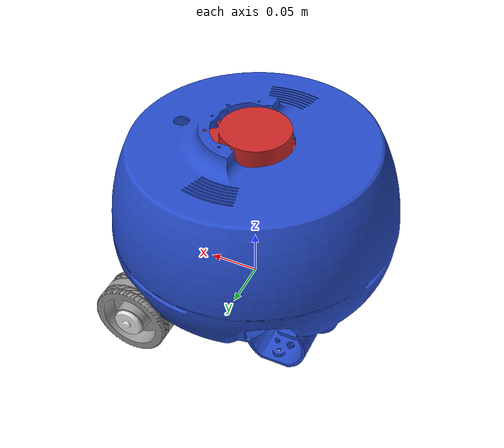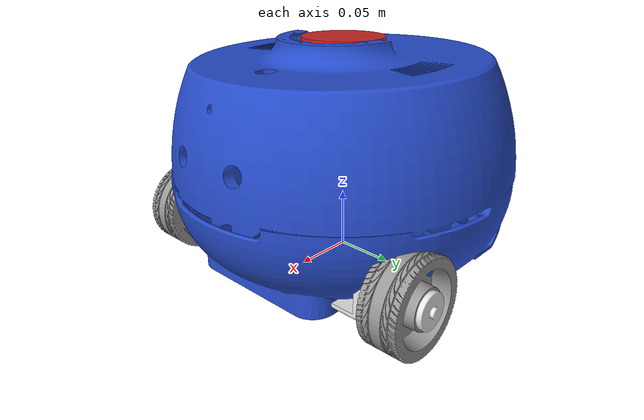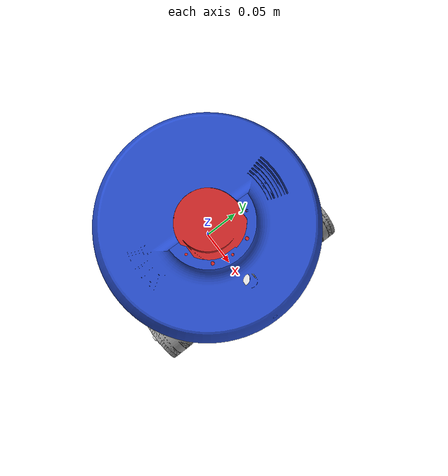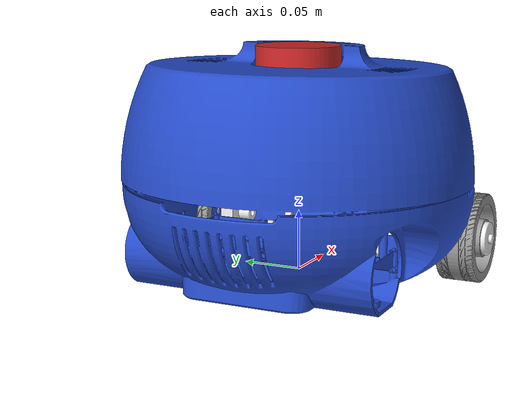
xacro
<?xml version="1.0"?>
<robot xmlns:xacro="http://www.ros.org/wiki/xacro" name="angelbot">
	<xacro:property name="robotname" value="angelbot"/>
	<!-- Import all Gazebo-customization elements, including Gazebo colors-->
 	<xacro:include filename="$(find angelbot_sim)/modeldescription/urdf/angelbot.gazebo" />
 	<!-- Import Rviz colors -->
	<xacro:include filename="$(find angelbot_sim)/modeldescription/urdf/angelbotmaterial4rviz.xacro"/>
	<transmission name="trans_mobile_left">
		<type>transmission_interface/SimpleTransmission</type>
		<joint name="shaft2leftwheel">
			<hardwareInterface>EffortJointInterface</hardwareInterface></joint>
		<actuator name="leftwheelmotor">
			<mechanicalReduction>1</mechanicalReduction></actuator></transmission>
	<transmission name="trans_mobile_right">
		<type>transmission_interface/SimpleTransmission</type>
		<joint name="shaft2rightwheel">
			<hardwareInterface>EffortJointInterface</hardwareInterface></joint>
		<actuator name="rightwheelmotor">
			<mechanicalReduction>1</mechanicalReduction></actuator></transmission>

	<link name="${robotname}_base">
		<collision>
			<geometry>
				<mesh filename="package://angelbot_sim/modeldescription/mesh/angel_housing.STL"></mesh></geometry></collision>
		<visual>
			<geometry>
				<mesh filename="package://angelbot_sim/modeldescription/mesh/angel_housing.STL"/>
			</geometry>
			<material name="blue"></material>
			<origin rpy="0 0 0" xyz="0 0 0"/>
		</visual>
		<inertial>
			<mass value="0.42642"/>
			<inertia ixx="0.0119" ixy="0.0" ixz="0.0" iyy="0.0118" iyz="0.0" izz="0.0063"/>
		</inertial>
	</link>
	<link name="${robotname}_shaft">
		<collision>
			<geometry>
				<mesh filename="package://angelbot_sim/modeldescription/mesh/angel_shaftholder.STL"></mesh></geometry></collision>
		<visual>
			<geometry>
				<mesh filename="package://angelbot_sim/modeldescription/mesh/angel_shaftholder.STL"/>
			</geometry>
			<material name="white">
			</material>
		</visual>
		<inertial>
			<mass value="0.2645"/>
			<inertia ixx="0.0014" ixy="0.0" ixz="0.0" iyy="0.0001" iyz="0.0" izz="0.0014"/>
		</inertial>
	</link>
	<link name="${robotname}_leftwheel">
		<collision>
			<geometry>
				<mesh filename="package://angelbot_sim/modeldescription/mesh/angel_leftwheel.STL"></mesh></geometry></collision>
		<visual>
			<geometry>
				<mesh filename="package://angelbot_sim/modeldescription/mesh/angel_leftwheel.STL"/>
			</geometry>
			<material name="grey">
			</material>
		</visual>
		<inertial>
			<mass value="0.3871"/>
			<inertia ixx="0.0238" ixy="0.0" ixz="0.0" iyy="0.0003" iyz="0.0" izz="0.0238"/>
		</inertial>
	</link>
	<link name="${robotname}_rightwheel">
		<collision>
			<geometry>
				<mesh filename="package://angelbot_sim/modeldescription/mesh/angel_rightwheel.STL"></mesh></geometry></collision>
		<visual>
			<geometry>
				<mesh filename="package://angelbot_sim/modeldescription/mesh/angel_rightwheel.STL"/>
			</geometry>
			<material name="grey">
			</material>
		</visual>
		<inertial>
			<mass value="0.3871"/>
			<inertia ixx="0.0238" ixy="0.0" ixz="0.0" iyy="0.0003" iyz="0.0" izz="0.0238"/>
		</inertial>
	</link>
	<link name="${robotname}_rplidar">
		<collision>
			<geometry>
				<mesh filename="package://angelbot_sim/modeldescription/mesh/angel_rplidar.STL"></mesh></geometry></collision>
		<visual>
			<geometry>
				<mesh filename="package://angelbot_sim/modeldescription/mesh/angel_rplidar.STL"></mesh></geometry>
			<material name="red"></material></visual>
		<inertial>
			<mass value="0.20856"></mass>
			<inertia ixx="0.0001" ixy="0.0" ixz="0.0" iyy="0.0002" iyz="0.0" izz="0.0002"></inertia></inertial></link>
	<joint name="base2shaft" type="fixed">
		<parent link="${robotname}_base"/>
		<child link="${robotname}_shaft"/>
		<origin xyz="0.07 0 0.0255"/>
	</joint>
	<joint name="shaft2leftwheel" type="continuous">
		<parent link="${robotname}_shaft"/>
		<child link="${robotname}_leftwheel"/>
		<origin xyz="0 0.1235 0"/>
		<axis xyz="0 -1 0"/>
	</joint>
	<joint name="shaft2rightwheel" type="continuous">
		<parent link="${robotname}_shaft"/>
		<child link="${robotname}_rightwheel"/>
		<origin xyz="0 -0.1235 0"/>
		<axis xyz="0 1 0"/>
	</joint>
	<joint name="base2rplidar" type="fixed">
		<parent link="${robotname}_base"></parent>
		<child link="${robotname}_rplidar"></child>
		<origin xyz="-0.0007 0.00015 0.15949"></origin></joint>
</robot>

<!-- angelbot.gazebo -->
<robot xmlns:xacro="http://www.ros.org/wiki/xacro">
	<xacro:property name="robotname" value="angelbot"/>
	<!-- ros_control plugin -->
	<gazebo>
	  <plugin name="gazebo_ros_control" filename="libgazebo_ros_control.so">
	    <robotNamespace>/angelbot</robotNamespace>
	    <robotSimType>gazebo_ros_control/DefaultRobotHWSim</robotSimType>
	  </plugin>
	  <plugin name="differential_drive_controller" filename="libgazebo_ros_diff_drive.so">
	  	<publishWheelTF>false</publishWheelTF>
	  	<robotNamespace>/</robotNamespace>
	  	<publishTf>1</publishTf>
	  	<publishWheelJointState>false</publishWheelJointState>
	  	<alwaysOn>true</alwaysOn>
	  	<updateRate>100.0</updateRate>
	  	<leftJoint>shaft2leftwheel</leftJoint>
	  	<rightJoint>shaft2rightwheel</rightJoint>
	  	<wheelSeparation>0.247</wheelSeparation>
	  	<wheelDiameter>0.075</wheelDiameter>
	  	<broadcastTF>1</broadcastTF>
	  	<wheelTorque>30</wheelTorque>
	  	<wheelAcceleration>1.8</wheelAcceleration>
	  	<commandTopic>cmd_vel</commandTopic>
	  	<odometryTopic>odom</odometryTopic>
    	<odometryFrame>odom</odometryFrame>
    	<robotBaseFrame>${robotname}_base</robotBaseFrame></plugin>
	</gazebo>

	<!--baselink-->
	<gazebo reference="${robotname}_base">
		<material>Gazebo/Blue</material></gazebo>
	<gazebo reference="${robotname}_shaft"><material>Gazebo/White</material></gazebo>
	<gazebo reference="${robotname}_leftwheel"><material>Gazebo/Grey</material></gazebo>
	<gazebo reference="${robotname}_rightwheel"><material>Gazebo/Grey</material></gazebo>
	<gazebo reference="${robotname}_rplidar"><material>Gazebo/Red</material>
		<sensor type="ray" name="rplidar">
			<pose>0 0 0 0 0 0</pose>
			<visualize>false</visualize>
			<update_rate>40</update_rate>
			<ray>
				<scan>
					<horizontal>
						<samples>180</samples>
						<resolution>1</resolution>
						<min_angle>-1.570796</min_angle>
						<max_angle>1.570796</max_angle></horizontal></scan>
					<range>
						<min>0.15</min>
          				<max>6.0</max>
          				<resolution>0.01</resolution></range>
					<noise></noise></ray>
		<plugin name="gazebo_ros_head_hokuyo_controller" filename="libgazebo_ros_laser.so">
        <topicName>${robotname}_rplidar_scan</topicName>
        <frameName>${robotname}_rplidar</frameName>
      </plugin></sensor></gazebo></robot>
